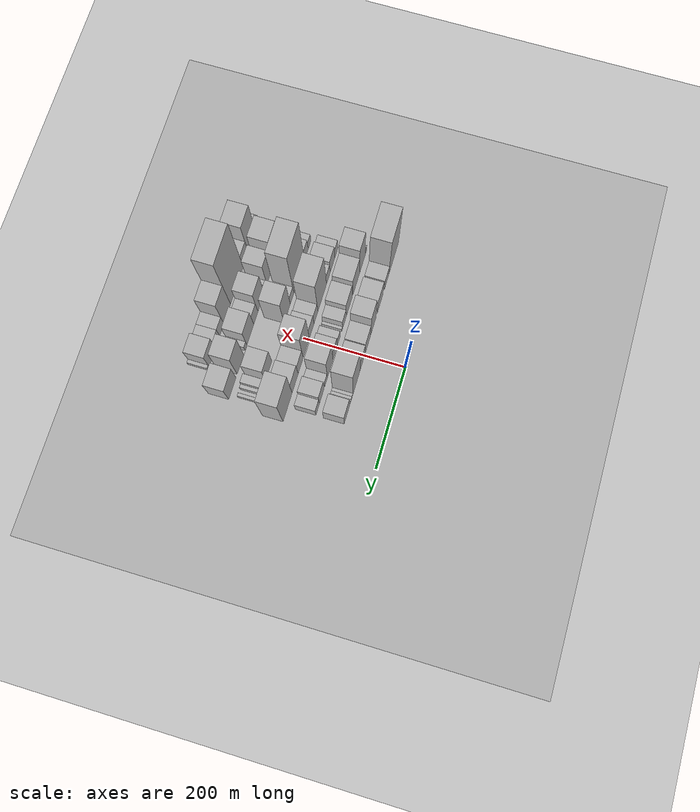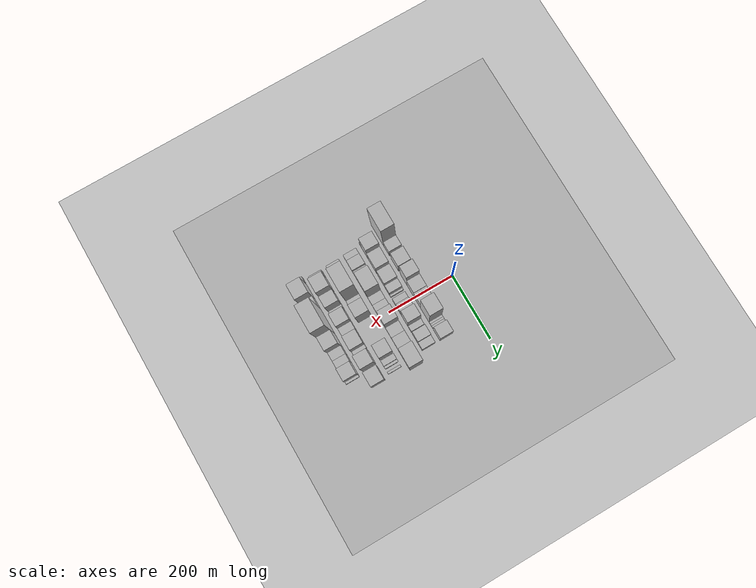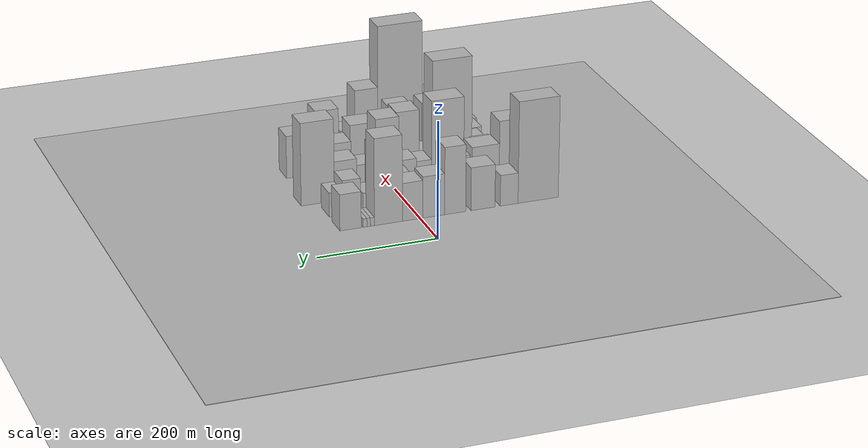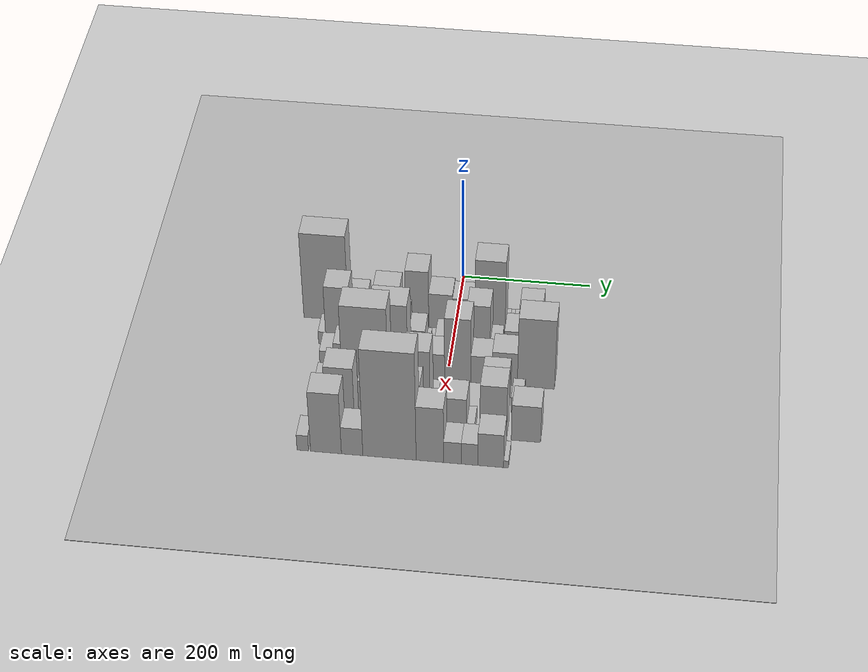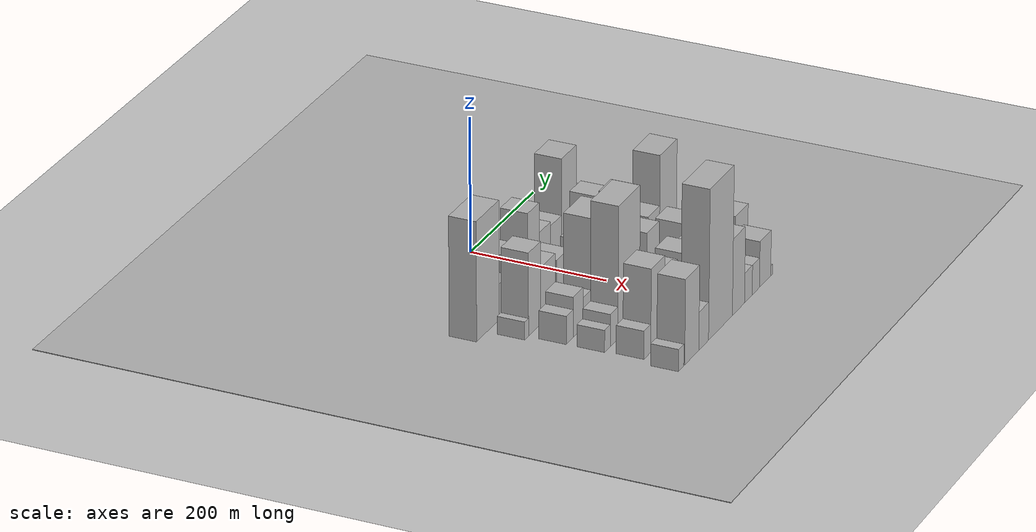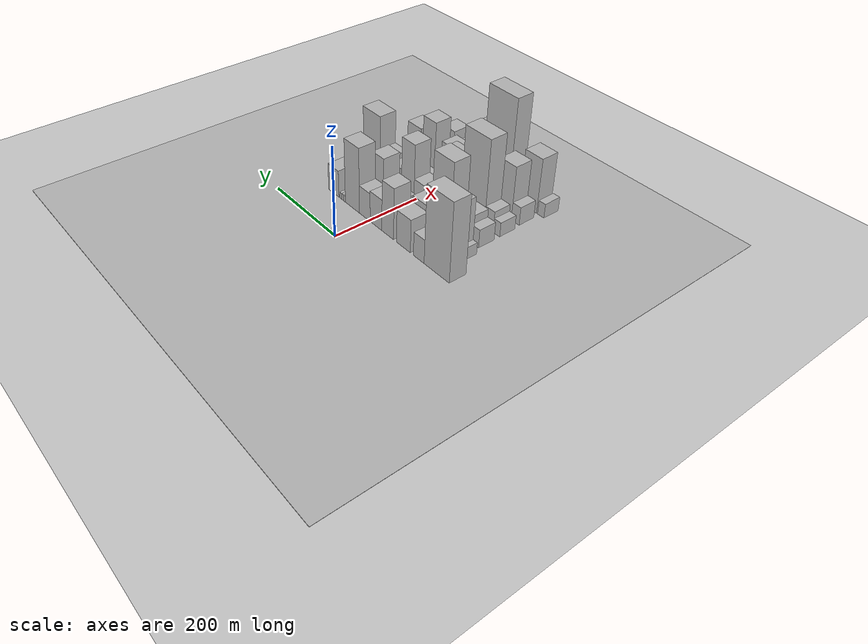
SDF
<sdf version="1.6">
 <world name="default">
  <include><name>ground_plane_1</name><uri>model://HANNAS_ground_plane</uri></include>
  <include>
   <name>ground_plane_2</name>
   <uri>model://HANNAS_ground_plane</uri>
   <pose>100 0 0  0 0 0</pose>
  </include>
  <model name="building_20">
   <static>1</static>
   <pose>100.0000 -201.3446 0 0.000000 0.000000 0.000000</pose>
   <link name="link">
    <pose>0 0 88.50 0 0 0</pose>
    <collision name="collision"><geometry><box><size>40.0000 69.7743 177.0000</size></box></geometry></collision>
    <visual name="visual">
     <cast_shadows>0</cast_shadows>
     <geometry><box><size>40.0000 69.7743 177.0000</size></box></geometry>
     <material>
      <script>
       <uri>model://HANNAS_wall/materials/scripts</uri>
       <uri>model://HANNAS_wall/materials/textures</uri>
       <name>vrc/HANNAS_wall</name>
      </script>
     </material>
    </visual>
   </link>
  </model>
  <model name="building_21">
   <static>1</static>
   <pose>100.0000 -151.1282 0 0.000000 0.000000 0.000000</pose>
   <link name="link">
    <pose>0 0 27.00 0 0 0</pose>
    <collision name="collision"><geometry><box><size>40.0000 30.6586 54.0000</size></box></geometry></collision>
    <visual name="visual">
     <cast_shadows>0</cast_shadows>
     <geometry><box><size>40.0000 30.6586 54.0000</size></box></geometry>
     <material>
      <script>
       <uri>model://HANNAS_wall/materials/scripts</uri>
       <uri>model://HANNAS_wall/materials/textures</uri>
       <name>vrc/HANNAS_wall</name>
      </script>
     </material>
    </visual>
   </link>
  </model>
  <model name="building_22">
   <static>1</static>
   <pose>100.0000 -106.2532 0 0.000000 0.000000 0.000000</pose>
   <link name="link">
    <pose>0 0 37.50 0 0 0</pose>
    <collision name="collision"><geometry><box><size>40.0000 41.0914 75.0000</size></box></geometry></collision>
    <visual name="visual">
     <cast_shadows>0</cast_shadows>
     <geometry><box><size>40.0000 41.0914 75.0000</size></box></geometry>
     <material>
      <script>
       <uri>model://HANNAS_wall/materials/scripts</uri>
       <uri>model://HANNAS_wall/materials/textures</uri>
       <name>vrc/HANNAS_wall</name>
      </script>
     </material>
    </visual>
   </link>
  </model>
  <model name="building_23">
   <static>1</static>
   <pose>100.0000 -58.7325 0 0.000000 0.000000 0.000000</pose>
   <link name="link">
    <pose>0 0 58.50 0 0 0</pose>
    <collision name="collision"><geometry><box><size>40.0000 35.9500 117.0000</size></box></geometry></collision>
    <visual name="visual">
     <cast_shadows>0</cast_shadows>
     <geometry><box><size>40.0000 35.9500 117.0000</size></box></geometry>
     <material>
      <script>
       <uri>model://HANNAS_wall/materials/scripts</uri>
       <uri>model://HANNAS_wall/materials/textures</uri>
       <name>vrc/HANNAS_wall</name>
      </script>
     </material>
    </visual>
   </link>
  </model>
  <model name="building_24">
   <static>1</static>
   <pose>100.0000 -22.3006 0 0.000000 0.000000 0.000000</pose>
   <link name="link">
    <pose>0 0 36.00 0 0 0</pose>
    <collision name="collision"><geometry><box><size>40.0000 36.9137 72.0000</size></box></geometry></collision>
    <visual name="visual">
     <cast_shadows>0</cast_shadows>
     <geometry><box><size>40.0000 36.9137 72.0000</size></box></geometry>
     <material>
      <script>
       <uri>model://HANNAS_wall/materials/scripts</uri>
       <uri>model://HANNAS_wall/materials/textures</uri>
       <name>vrc/HANNAS_wall</name>
      </script>
     </material>
    </visual>
   </link>
  </model>
  <model name="building_25">
   <static>1</static>
   <pose>100.0000 13.4594 0 0.000000 0.000000 0.000000</pose>
   <link name="link">
    <pose>0 0 33.00 0 0 0</pose>
    <collision name="collision"><geometry><box><size>40.0000 34.6064 66.0000</size></box></geometry></collision>
    <visual name="visual">
     <cast_shadows>0</cast_shadows>
     <geometry><box><size>40.0000 34.6064 66.0000</size></box></geometry>
     <material>
      <script>
       <uri>model://HANNAS_wall/materials/scripts</uri>
       <uri>model://HANNAS_wall/materials/textures</uri>
       <name>vrc/HANNAS_wall</name>
      </script>
     </material>
    </visual>
   </link>
  </model>
  <model name="building_26">
   <static>1</static>
   <pose>100.0000 54.2847 0 0.000000 0.000000 0.000000</pose>
   <link name="link">
    <pose>0 0 75.00 0 0 0</pose>
    <collision name="collision"><geometry><box><size>40.0000 47.0442 150.0000</size></box></geometry></collision>
    <visual name="visual">
     <cast_shadows>0</cast_shadows>
     <geometry><box><size>40.0000 47.0442 150.0000</size></box></geometry>
     <material>
      <script>
       <uri>model://HANNAS_wall/materials/scripts</uri>
       <uri>model://HANNAS_wall/materials/textures</uri>
       <name>vrc/HANNAS_wall</name>
      </script>
     </material>
    </visual>
   </link>
  </model>
  <model name="building_27">
   <static>1</static>
   <pose>100.0000 81.0276 0 0.000000 0.000000 0.000000</pose>
   <link name="link">
    <pose>0 0 7.50 0 0 0</pose>
    <collision name="collision"><geometry><box><size>40.0000 6.4415 15.0000</size></box></geometry></collision>
    <visual name="visual">
     <cast_shadows>0</cast_shadows>
     <geometry><box><size>40.0000 6.4415 15.0000</size></box></geometry>
     <material>
      <script>
       <uri>model://HANNAS_wall/materials/scripts</uri>
       <uri>model://HANNAS_wall/materials/textures</uri>
       <name>vrc/HANNAS_wall</name>
      </script>
     </material>
    </visual>
   </link>
  </model>
  <model name="building_28">
   <static>1</static>
   <pose>100.0000 87.2667 0 0.000000 0.000000 0.000000</pose>
   <link name="link">
    <pose>0 0 7.50 0 0 0</pose>
    <collision name="collision"><geometry><box><size>40.0000 6.0367 15.0000</size></box></geometry></collision>
    <visual name="visual">
     <cast_shadows>0</cast_shadows>
     <geometry><box><size>40.0000 6.0367 15.0000</size></box></geometry>
     <material>
      <script>
       <uri>model://HANNAS_wall/materials/scripts</uri>
       <uri>model://HANNAS_wall/materials/textures</uri>
       <name>vrc/HANNAS_wall</name>
      </script>
     </material>
    </visual>
   </link>
  </model>
  <model name="building_29">
   <static>1</static>
   <pose>100.0000 93.5293 0 0.000000 0.000000 0.000000</pose>
   <link name="link">
    <pose>0 0 7.50 0 0 0</pose>
    <collision name="collision"><geometry><box><size>40.0000 6.4887 15.0000</size></box></geometry></collision>
    <visual name="visual">
     <cast_shadows>0</cast_shadows>
     <geometry><box><size>40.0000 6.4887 15.0000</size></box></geometry>
     <material>
      <script>
       <uri>model://HANNAS_wall/materials/scripts</uri>
       <uri>model://HANNAS_wall/materials/textures</uri>
       <name>vrc/HANNAS_wall</name>
      </script>
     </material>
    </visual>
   </link>
  </model>
  <model name="building_30">
   <static>1</static>
   <pose>100.0000 117.5824 0 0.000000 0.000000 0.000000</pose>
   <link name="link">
    <pose>0 0 31.50 0 0 0</pose>
    <collision name="collision"><geometry><box><size>40.0000 35.6174 63.0000</size></box></geometry></collision>
    <visual name="visual">
     <cast_shadows>0</cast_shadows>
     <geometry><box><size>40.0000 35.6174 63.0000</size></box></geometry>
     <material>
      <script>
       <uri>model://HANNAS_wall/materials/scripts</uri>
       <uri>model://HANNAS_wall/materials/textures</uri>
       <name>vrc/HANNAS_wall</name>
      </script>
     </material>
    </visual>
   </link>
  </model>
  <model name="building_73">
   <static>1</static>
   <pose>155.0000 -198.6555 0 0.000000 0.000000 0.000000</pose>
   <link name="link">
    <pose>0 0 13.50 0 0 0</pose>
    <collision name="collision"><geometry><box><size>40.0000 11.7102 27.0000</size></box></geometry></collision>
    <visual name="visual">
     <cast_shadows>0</cast_shadows>
     <geometry><box><size>40.0000 11.7102 27.0000</size></box></geometry>
     <material>
      <script>
       <uri>model://HANNAS_wall/materials/scripts</uri>
       <uri>model://HANNAS_wall/materials/textures</uri>
       <name>vrc/HANNAS_wall</name>
      </script>
     </material>
    </visual>
   </link>
  </model>
  <model name="building_74">
   <static>1</static>
   <pose>155.0000 -174.0306 0 0.000000 0.000000 0.000000</pose>
   <link name="link">
    <pose>0 0 61.50 0 0 0</pose>
    <collision name="collision"><geometry><box><size>40.0000 37.5398 123.0000</size></box></geometry></collision>
    <visual name="visual">
     <cast_shadows>0</cast_shadows>
     <geometry><box><size>40.0000 37.5398 123.0000</size></box></geometry>
     <material>
      <script>
       <uri>model://HANNAS_wall/materials/scripts</uri>
       <uri>model://HANNAS_wall/materials/textures</uri>
       <name>vrc/HANNAS_wall</name>
      </script>
     </material>
    </visual>
   </link>
  </model>
  <model name="building_75">
   <static>1</static>
   <pose>155.0000 -131.9010 0 0.000000 0.000000 0.000000</pose>
   <link name="link">
    <pose>0 0 42.00 0 0 0</pose>
    <collision name="collision"><geometry><box><size>40.0000 46.7193 84.0000</size></box></geometry></collision>
    <visual name="visual">
     <cast_shadows>0</cast_shadows>
     <geometry><box><size>40.0000 46.7193 84.0000</size></box></geometry>
     <material>
      <script>
       <uri>model://HANNAS_wall/materials/scripts</uri>
       <uri>model://HANNAS_wall/materials/textures</uri>
       <name>vrc/HANNAS_wall</name>
      </script>
     </material>
    </visual>
   </link>
  </model>
  <model name="building_76">
   <static>1</static>
   <pose>155.0000 -84.4786 0 0.000000 0.000000 0.000000</pose>
   <link name="link">
    <pose>0 0 36.00 0 0 0</pose>
    <collision name="collision"><geometry><box><size>40.0000 40.1254 72.0000</size></box></geometry></collision>
    <visual name="visual">
     <cast_shadows>0</cast_shadows>
     <geometry><box><size>40.0000 40.1254 72.0000</size></box></geometry>
     <material>
      <script>
       <uri>model://HANNAS_wall/materials/scripts</uri>
       <uri>model://HANNAS_wall/materials/textures</uri>
       <name>vrc/HANNAS_wall</name>
      </script>
     </material>
    </visual>
   </link>
  </model>
  <model name="building_77">
   <static>1</static>
   <pose>155.0000 -52.0069 0 0.000000 0.000000 0.000000</pose>
   <link name="link">
    <pose>0 0 22.50 0 0 0</pose>
    <collision name="collision"><geometry><box><size>40.0000 24.8181 45.0000</size></box></geometry></collision>
    <visual name="visual">
     <cast_shadows>0</cast_shadows>
     <geometry><box><size>40.0000 24.8181 45.0000</size></box></geometry>
     <material>
      <script>
       <uri>model://HANNAS_wall/materials/scripts</uri>
       <uri>model://HANNAS_wall/materials/textures</uri>
       <name>vrc/HANNAS_wall</name>
      </script>
     </material>
    </visual>
   </link>
  </model>
  <model name="building_78">
   <static>1</static>
   <pose>155.0000 -36.5158 0 0.000000 0.000000 0.000000</pose>
   <link name="link">
    <pose>0 0 7.50 0 0 0</pose>
    <collision name="collision"><geometry><box><size>40.0000 6.1641 15.0000</size></box></geometry></collision>
    <visual name="visual">
     <cast_shadows>0</cast_shadows>
     <geometry><box><size>40.0000 6.1641 15.0000</size></box></geometry>
     <material>
      <script>
       <uri>model://HANNAS_wall/materials/scripts</uri>
       <uri>model://HANNAS_wall/materials/textures</uri>
       <name>vrc/HANNAS_wall</name>
      </script>
     </material>
    </visual>
   </link>
  </model>
  <model name="building_79">
   <static>1</static>
   <pose>155.0000 -14.5447 0 0.000000 0.000000 0.000000</pose>
   <link name="link">
    <pose>0 0 18.00 0 0 0</pose>
    <collision name="collision"><geometry><box><size>40.0000 19.7781 36.0000</size></box></geometry></collision>
    <visual name="visual">
     <cast_shadows>0</cast_shadows>
     <geometry><box><size>40.0000 19.7781 36.0000</size></box></geometry>
     <material>
      <script>
       <uri>model://HANNAS_wall/materials/scripts</uri>
       <uri>model://HANNAS_wall/materials/textures</uri>
       <name>vrc/HANNAS_wall</name>
      </script>
     </material>
    </visual>
   </link>
  </model>
  <model name="building_80">
   <static>1</static>
   <pose>155.0000 9.8676 0 0.000000 0.000000 0.000000</pose>
   <link name="link">
    <pose>0 0 27.00 0 0 0</pose>
    <collision name="collision"><geometry><box><size>40.0000 29.0464 54.0000</size></box></geometry></collision>
    <visual name="visual">
     <cast_shadows>0</cast_shadows>
     <geometry><box><size>40.0000 29.0464 54.0000</size></box></geometry>
     <material>
      <script>
       <uri>model://HANNAS_wall/materials/scripts</uri>
       <uri>model://HANNAS_wall/materials/textures</uri>
       <name>vrc/HANNAS_wall</name>
      </script>
     </material>
    </visual>
   </link>
  </model>
  <model name="building_81">
   <static>1</static>
   <pose>155.0000 42.1781 0 0.000000 0.000000 0.000000</pose>
   <link name="link">
    <pose>0 0 54.00 0 0 0</pose>
    <collision name="collision"><geometry><box><size>40.0000 35.5747 108.0000</size></box></geometry></collision>
    <visual name="visual">
     <cast_shadows>0</cast_shadows>
     <geometry><box><size>40.0000 35.5747 108.0000</size></box></geometry>
     <material>
      <script>
       <uri>model://HANNAS_wall/materials/scripts</uri>
       <uri>model://HANNAS_wall/materials/textures</uri>
       <name>vrc/HANNAS_wall</name>
      </script>
     </material>
    </visual>
   </link>
  </model>
  <model name="building_82">
   <static>1</static>
   <pose>155.0000 68.7974 0 0.000000 0.000000 0.000000</pose>
   <link name="link">
    <pose>0 0 16.50 0 0 0</pose>
    <collision name="collision"><geometry><box><size>40.0000 17.6639 33.0000</size></box></geometry></collision>
    <visual name="visual">
     <cast_shadows>0</cast_shadows>
     <geometry><box><size>40.0000 17.6639 33.0000</size></box></geometry>
     <material>
      <script>
       <uri>model://HANNAS_wall/materials/scripts</uri>
       <uri>model://HANNAS_wall/materials/textures</uri>
       <name>vrc/HANNAS_wall</name>
      </script>
     </material>
    </visual>
   </link>
  </model>
  <model name="building_83">
   <static>1</static>
   <pose>155.0000 96.8681 0 0.000000 0.000000 0.000000</pose>
   <link name="link">
    <pose>0 0 30.00 0 0 0</pose>
    <collision name="collision"><geometry><box><size>40.0000 30.4774 60.0000</size></box></geometry></collision>
    <visual name="visual">
     <cast_shadows>0</cast_shadows>
     <geometry><box><size>40.0000 30.4774 60.0000</size></box></geometry>
     <material>
      <script>
       <uri>model://HANNAS_wall/materials/scripts</uri>
       <uri>model://HANNAS_wall/materials/textures</uri>
       <name>vrc/HANNAS_wall</name>
      </script>
     </material>
    </visual>
   </link>
  </model>
  <model name="building_84">
   <static>1</static>
   <pose>155.0000 123.2634 0 0.000000 0.000000 0.000000</pose>
   <link name="link">
    <pose>0 0 21.00 0 0 0</pose>
    <collision name="collision"><geometry><box><size>40.0000 22.3132 42.0000</size></box></geometry></collision>
    <visual name="visual">
     <cast_shadows>0</cast_shadows>
     <geometry><box><size>40.0000 22.3132 42.0000</size></box></geometry>
     <material>
      <script>
       <uri>model://HANNAS_wall/materials/scripts</uri>
       <uri>model://HANNAS_wall/materials/textures</uri>
       <name>vrc/HANNAS_wall</name>
      </script>
     </material>
    </visual>
   </link>
  </model>
  <model name="building_128">
   <static>1</static>
   <pose>210.0000 -182.5738 0 0.000000 0.000000 0.000000</pose>
   <link name="link">
    <pose>0 0 21.00 0 0 0</pose>
    <collision name="collision"><geometry><box><size>40.0000 21.4988 42.0000</size></box></geometry></collision>
    <visual name="visual">
     <cast_shadows>0</cast_shadows>
     <geometry><box><size>40.0000 21.4988 42.0000</size></box></geometry>
     <material>
      <script>
       <uri>model://HANNAS_wall/materials/scripts</uri>
       <uri>model://HANNAS_wall/materials/textures</uri>
       <name>vrc/HANNAS_wall</name>
      </script>
     </material>
    </visual>
   </link>
  </model>
  <model name="building_129">
   <static>1</static>
   <pose>210.0000 -156.0435 0 0.000000 0.000000 0.000000</pose>
   <link name="link">
    <pose>0 0 30.00 0 0 0</pose>
    <collision name="collision"><geometry><box><size>40.0000 31.5618 60.0000</size></box></geometry></collision>
    <visual name="visual">
     <cast_shadows>0</cast_shadows>
     <geometry><box><size>40.0000 31.5618 60.0000</size></box></geometry>
     <material>
      <script>
       <uri>model://HANNAS_wall/materials/scripts</uri>
       <uri>model://HANNAS_wall/materials/textures</uri>
       <name>vrc/HANNAS_wall</name>
      </script>
     </material>
    </visual>
   </link>
  </model>
  <model name="building_130">
   <static>1</static>
   <pose>210.0000 -127.8274 0 0.000000 0.000000 0.000000</pose>
   <link name="link">
    <pose>0 0 22.50 0 0 0</pose>
    <collision name="collision"><geometry><box><size>40.0000 24.8705 45.0000</size></box></geometry></collision>
    <visual name="visual">
     <cast_shadows>0</cast_shadows>
     <geometry><box><size>40.0000 24.8705 45.0000</size></box></geometry>
     <material>
      <script>
       <uri>model://HANNAS_wall/materials/scripts</uri>
       <uri>model://HANNAS_wall/materials/textures</uri>
       <name>vrc/HANNAS_wall</name>
      </script>
     </material>
    </visual>
   </link>
  </model>
  <model name="building_131">
   <static>1</static>
   <pose>210.0000 -87.2144 0 0.000000 0.000000 0.000000</pose>
   <link name="link">
    <pose>0 0 75.00 0 0 0</pose>
    <collision name="collision"><geometry><box><size>40.0000 56.3555 150.0000</size></box></geometry></collision>
    <visual name="visual">
     <cast_shadows>0</cast_shadows>
     <geometry><box><size>40.0000 56.3555 150.0000</size></box></geometry>
     <material>
      <script>
       <uri>model://HANNAS_wall/materials/scripts</uri>
       <uri>model://HANNAS_wall/materials/textures</uri>
       <name>vrc/HANNAS_wall</name>
      </script>
     </material>
    </visual>
   </link>
  </model>
  <model name="building_132">
   <static>1</static>
   <pose>210.0000 -46.1174 0 0.000000 0.000000 0.000000</pose>
   <link name="link">
    <pose>0 0 24.00 0 0 0</pose>
    <collision name="collision"><geometry><box><size>40.0000 25.8386 48.0000</size></box></geometry></collision>
    <visual name="visual">
     <cast_shadows>0</cast_shadows>
     <geometry><box><size>40.0000 25.8386 48.0000</size></box></geometry>
     <material>
      <script>
       <uri>model://HANNAS_wall/materials/scripts</uri>
       <uri>model://HANNAS_wall/materials/textures</uri>
       <name>vrc/HANNAS_wall</name>
      </script>
     </material>
    </visual>
   </link>
  </model>
  <model name="building_133">
   <static>1</static>
   <pose>210.0000 -18.2294 0 0.000000 0.000000 0.000000</pose>
   <link name="link">
    <pose>0 0 27.00 0 0 0</pose>
    <collision name="collision"><geometry><box><size>40.0000 29.9373 54.0000</size></box></geometry></collision>
    <visual name="visual">
     <cast_shadows>0</cast_shadows>
     <geometry><box><size>40.0000 29.9373 54.0000</size></box></geometry>
     <material>
      <script>
       <uri>model://HANNAS_wall/materials/scripts</uri>
       <uri>model://HANNAS_wall/materials/textures</uri>
       <name>vrc/HANNAS_wall</name>
      </script>
     </material>
    </visual>
   </link>
  </model>
  <model name="building_134">
   <static>1</static>
   <pose>210.0000 16.5444 0 0.000000 0.000000 0.000000</pose>
   <link name="link">
    <pose>0 0 66.00 0 0 0</pose>
    <collision name="collision"><geometry><box><size>40.0000 39.6102 132.0000</size></box></geometry></collision>
    <visual name="visual">
     <cast_shadows>0</cast_shadows>
     <geometry><box><size>40.0000 39.6102 132.0000</size></box></geometry>
     <material>
      <script>
       <uri>model://HANNAS_wall/materials/scripts</uri>
       <uri>model://HANNAS_wall/materials/textures</uri>
       <name>vrc/HANNAS_wall</name>
      </script>
     </material>
    </visual>
   </link>
  </model>
  <model name="building_135">
   <static>1</static>
   <pose>210.0000 52.4841 0 0.000000 0.000000 0.000000</pose>
   <link name="link">
    <pose>0 0 28.50 0 0 0</pose>
    <collision name="collision"><geometry><box><size>40.0000 32.2692 57.0000</size></box></geometry></collision>
    <visual name="visual">
     <cast_shadows>0</cast_shadows>
     <geometry><box><size>40.0000 32.2692 57.0000</size></box></geometry>
     <material>
      <script>
       <uri>model://HANNAS_wall/materials/scripts</uri>
       <uri>model://HANNAS_wall/materials/textures</uri>
       <name>vrc/HANNAS_wall</name>
      </script>
     </material>
    </visual>
   </link>
  </model>
  <model name="building_136">
   <static>1</static>
   <pose>210.0000 87.8086 0 0.000000 0.000000 0.000000</pose>
   <link name="link">
    <pose>0 0 34.50 0 0 0</pose>
    <collision name="collision"><geometry><box><size>40.0000 38.3798 69.0000</size></box></geometry></collision>
    <visual name="visual">
     <cast_shadows>0</cast_shadows>
     <geometry><box><size>40.0000 38.3798 69.0000</size></box></geometry>
     <material>
      <script>
       <uri>model://HANNAS_wall/materials/scripts</uri>
       <uri>model://HANNAS_wall/materials/textures</uri>
       <name>vrc/HANNAS_wall</name>
      </script>
     </material>
    </visual>
   </link>
  </model>
  <model name="building_137">
   <static>1</static>
   <pose>210.0000 135.0803 0 0.000000 0.000000 0.000000</pose>
   <link name="link">
    <pose>0 0 72.00 0 0 0</pose>
    <collision name="collision"><geometry><box><size>40.0000 56.1637 144.0000</size></box></geometry></collision>
    <visual name="visual">
     <cast_shadows>0</cast_shadows>
     <geometry><box><size>40.0000 56.1637 144.0000</size></box></geometry>
     <material>
      <script>
       <uri>model://HANNAS_wall/materials/scripts</uri>
       <uri>model://HANNAS_wall/materials/textures</uri>
       <name>vrc/HANNAS_wall</name>
      </script>
     </material>
    </visual>
   </link>
  </model>
  <model name="building_179">
   <static>1</static>
   <pose>265.0000 -183.7679 0 0.000000 0.000000 0.000000</pose>
   <link name="link">
    <pose>0 0 16.50 0 0 0</pose>
    <collision name="collision"><geometry><box><size>40.0000 18.1372 33.0000</size></box></geometry></collision>
    <visual name="visual">
     <cast_shadows>0</cast_shadows>
     <geometry><box><size>40.0000 18.1372 33.0000</size></box></geometry>
     <material>
      <script>
       <uri>model://HANNAS_wall/materials/scripts</uri>
       <uri>model://HANNAS_wall/materials/textures</uri>
       <name>vrc/HANNAS_wall</name>
      </script>
     </material>
    </visual>
   </link>
  </model>
  <model name="building_180">
   <static>1</static>
   <pose>265.0000 -162.4376 0 0.000000 0.000000 0.000000</pose>
   <link name="link">
    <pose>0 0 24.00 0 0 0</pose>
    <collision name="collision"><geometry><box><size>40.0000 24.5234 48.0000</size></box></geometry></collision>
    <visual name="visual">
     <cast_shadows>0</cast_shadows>
     <geometry><box><size>40.0000 24.5234 48.0000</size></box></geometry>
     <material>
      <script>
       <uri>model://HANNAS_wall/materials/scripts</uri>
       <uri>model://HANNAS_wall/materials/textures</uri>
       <name>vrc/HANNAS_wall</name>
      </script>
     </material>
    </visual>
   </link>
  </model>
  <model name="building_181">
   <static>1</static>
   <pose>265.0000 -115.6852 0 0.000000 0.000000 0.000000</pose>
   <link name="link">
    <pose>0 0 97.50 0 0 0</pose>
    <collision name="collision"><geometry><box><size>40.0000 68.9814 195.0000</size></box></geometry></collision>
    <visual name="visual">
     <cast_shadows>0</cast_shadows>
     <geometry><box><size>40.0000 68.9814 195.0000</size></box></geometry>
     <material>
      <script>
       <uri>model://HANNAS_wall/materials/scripts</uri>
       <uri>model://HANNAS_wall/materials/textures</uri>
       <name>vrc/HANNAS_wall</name>
      </script>
     </material>
    </visual>
   </link>
  </model>
  <model name="building_182">
   <static>1</static>
   <pose>265.0000 -69.5082 0 0.000000 0.000000 0.000000</pose>
   <link name="link">
    <pose>0 0 19.50 0 0 0</pose>
    <collision name="collision"><geometry><box><size>40.0000 23.3725 39.0000</size></box></geometry></collision>
    <visual name="visual">
     <cast_shadows>0</cast_shadows>
     <geometry><box><size>40.0000 23.3725 39.0000</size></box></geometry>
     <material>
      <script>
       <uri>model://HANNAS_wall/materials/scripts</uri>
       <uri>model://HANNAS_wall/materials/textures</uri>
       <name>vrc/HANNAS_wall</name>
      </script>
     </material>
    </visual>
   </link>
  </model>
  <model name="building_183">
   <static>1</static>
   <pose>265.0000 -38.2644 0 0.000000 0.000000 0.000000</pose>
   <link name="link">
    <pose>0 0 57.00 0 0 0</pose>
    <collision name="collision"><geometry><box><size>40.0000 39.1151 114.0000</size></box></geometry></collision>
    <visual name="visual">
     <cast_shadows>0</cast_shadows>
     <geometry><box><size>40.0000 39.1151 114.0000</size></box></geometry>
     <material>
      <script>
       <uri>model://HANNAS_wall/materials/scripts</uri>
       <uri>model://HANNAS_wall/materials/textures</uri>
       <name>vrc/HANNAS_wall</name>
      </script>
     </material>
    </visual>
   </link>
  </model>
  <model name="building_184">
   <static>1</static>
   <pose>265.0000 78.8642 0 0.000000 0.000000 0.000000</pose>
   <link name="link">
    <pose>0 0 37.50 0 0 0</pose>
    <collision name="collision"><geometry><box><size>40.0000 39.7140 75.0000</size></box></geometry></collision>
    <visual name="visual">
     <cast_shadows>0</cast_shadows>
     <geometry><box><size>40.0000 39.7140 75.0000</size></box></geometry>
     <material>
      <script>
       <uri>model://HANNAS_wall/materials/scripts</uri>
       <uri>model://HANNAS_wall/materials/textures</uri>
       <name>vrc/HANNAS_wall</name>
      </script>
     </material>
    </visual>
   </link>
  </model>
  <model name="building_185">
   <static>1</static>
   <pose>265.0000 111.4867 0 0.000000 0.000000 0.000000</pose>
   <link name="link">
    <pose>0 0 16.50 0 0 0</pose>
    <collision name="collision"><geometry><box><size>40.0000 17.5309 33.0000</size></box></geometry></collision>
    <visual name="visual">
     <cast_shadows>0</cast_shadows>
     <geometry><box><size>40.0000 17.5309 33.0000</size></box></geometry>
     <material>
      <script>
       <uri>model://HANNAS_wall/materials/scripts</uri>
       <uri>model://HANNAS_wall/materials/textures</uri>
       <name>vrc/HANNAS_wall</name>
      </script>
     </material>
    </visual>
   </link>
  </model>
  <model name="building_186">
   <static>1</static>
   <pose>265.0000 123.9360 0 0.000000 0.000000 0.000000</pose>
   <link name="link">
    <pose>0 0 9.00 0 0 0</pose>
    <collision name="collision"><geometry><box><size>40.0000 7.3678 18.0000</size></box></geometry></collision>
    <visual name="visual">
     <cast_shadows>0</cast_shadows>
     <geometry><box><size>40.0000 7.3678 18.0000</size></box></geometry>
     <material>
      <script>
       <uri>model://HANNAS_wall/materials/scripts</uri>
       <uri>model://HANNAS_wall/materials/textures</uri>
       <name>vrc/HANNAS_wall</name>
      </script>
     </material>
    </visual>
   </link>
  </model>
  <model name="building_187">
   <static>1</static>
   <pose>265.0000 139.9263 0 0.000000 0.000000 0.000000</pose>
   <link name="link">
    <pose>0 0 7.50 0 0 0</pose>
    <collision name="collision"><geometry><box><size>40.0000 6.6129 15.0000</size></box></geometry></collision>
    <visual name="visual">
     <cast_shadows>0</cast_shadows>
     <geometry><box><size>40.0000 6.6129 15.0000</size></box></geometry>
     <material>
      <script>
       <uri>model://HANNAS_wall/materials/scripts</uri>
       <uri>model://HANNAS_wall/materials/textures</uri>
       <name>vrc/HANNAS_wall</name>
      </script>
     </material>
    </visual>
   </link>
  </model>
  <model name="building_231">
   <static>1</static>
   <pose>320.0000 -178.3278 0 0.000000 0.000000 0.000000</pose>
   <link name="link">
    <pose>0 0 21.00 0 0 0</pose>
    <collision name="collision"><geometry><box><size>40.0000 21.5635 42.0000</size></box></geometry></collision>
    <visual name="visual">
     <cast_shadows>0</cast_shadows>
     <geometry><box><size>40.0000 21.5635 42.0000</size></box></geometry>
     <material>
      <script>
       <uri>model://HANNAS_wall/materials/scripts</uri>
       <uri>model://HANNAS_wall/materials/textures</uri>
       <name>vrc/HANNAS_wall</name>
      </script>
     </material>
    </visual>
   </link>
  </model>
  <model name="building_232">
   <static>1</static>
   <pose>320.0000 -145.9369 0 0.000000 0.000000 0.000000</pose>
   <link name="link">
    <pose>0 0 61.50 0 0 0</pose>
    <collision name="collision"><geometry><box><size>40.0000 43.2183 123.0000</size></box></geometry></collision>
    <visual name="visual">
     <cast_shadows>0</cast_shadows>
     <geometry><box><size>40.0000 43.2183 123.0000</size></box></geometry>
     <material>
      <script>
       <uri>model://HANNAS_wall/materials/scripts</uri>
       <uri>model://HANNAS_wall/materials/textures</uri>
       <name>vrc/HANNAS_wall</name>
      </script>
     </material>
    </visual>
   </link>
  </model>
  <model name="building_233">
   <static>1</static>
   <pose>320.0000 -100.2383 0 0.000000 0.000000 0.000000</pose>
   <link name="link">
    <pose>0 0 49.50 0 0 0</pose>
    <collision name="collision"><geometry><box><size>40.0000 34.1788 99.0000</size></box></geometry></collision>
    <visual name="visual">
     <cast_shadows>0</cast_shadows>
     <geometry><box><size>40.0000 34.1788 99.0000</size></box></geometry>
     <material>
      <script>
       <uri>model://HANNAS_wall/materials/scripts</uri>
       <uri>model://HANNAS_wall/materials/textures</uri>
       <name>vrc/HANNAS_wall</name>
      </script>
     </material>
    </visual>
   </link>
  </model>
  <model name="building_234">
   <static>1</static>
   <pose>320.0000 -77.8173 0 0.000000 0.000000 0.000000</pose>
   <link name="link">
    <pose>0 0 12.00 0 0 0</pose>
    <collision name="collision"><geometry><box><size>40.0000 10.6631 24.0000</size></box></geometry></collision>
    <visual name="visual">
     <cast_shadows>0</cast_shadows>
     <geometry><box><size>40.0000 10.6631 24.0000</size></box></geometry>
     <material>
      <script>
       <uri>model://HANNAS_wall/materials/scripts</uri>
       <uri>model://HANNAS_wall/materials/textures</uri>
       <name>vrc/HANNAS_wall</name>
      </script>
     </material>
    </visual>
   </link>
  </model>
  <model name="building_235">
   <static>1</static>
   <pose>320.0000 -68.8357 0 0.000000 0.000000 0.000000</pose>
   <link name="link">
    <pose>0 0 7.50 0 0 0</pose>
    <collision name="collision"><geometry><box><size>40.0000 7.3001 15.0000</size></box></geometry></collision>
    <visual name="visual">
     <cast_shadows>0</cast_shadows>
     <geometry><box><size>40.0000 7.3001 15.0000</size></box></geometry>
     <material>
      <script>
       <uri>model://HANNAS_wall/materials/scripts</uri>
       <uri>model://HANNAS_wall/materials/textures</uri>
       <name>vrc/HANNAS_wall</name>
      </script>
     </material>
    </visual>
   </link>
  </model>
  <model name="building_236">
   <static>1</static>
   <pose>320.0000 -45.8708 0 0.000000 0.000000 0.000000</pose>
   <link name="link">
    <pose>0 0 49.50 0 0 0</pose>
    <collision name="collision"><geometry><box><size>40.0000 38.6296 99.0000</size></box></geometry></collision>
    <visual name="visual">
     <cast_shadows>0</cast_shadows>
     <geometry><box><size>40.0000 38.6296 99.0000</size></box></geometry>
     <material>
      <script>
       <uri>model://HANNAS_wall/materials/scripts</uri>
       <uri>model://HANNAS_wall/materials/textures</uri>
       <name>vrc/HANNAS_wall</name>
      </script>
     </material>
    </visual>
   </link>
  </model>
  <model name="building_237">
   <static>1</static>
   <pose>320.0000 -13.3959 0 0.000000 0.000000 0.000000</pose>
   <link name="link">
    <pose>0 0 25.50 0 0 0</pose>
    <collision name="collision"><geometry><box><size>40.0000 26.3202 51.0000</size></box></geometry></collision>
    <visual name="visual">
     <cast_shadows>0</cast_shadows>
     <geometry><box><size>40.0000 26.3202 51.0000</size></box></geometry>
     <material>
      <script>
       <uri>model://HANNAS_wall/materials/scripts</uri>
       <uri>model://HANNAS_wall/materials/textures</uri>
       <name>vrc/HANNAS_wall</name>
      </script>
     </material>
    </visual>
   </link>
  </model>
  <model name="building_238">
   <static>1</static>
   <pose>320.0000 20.8801 0 0.000000 0.000000 0.000000</pose>
   <link name="link">
    <pose>0 0 39.00 0 0 0</pose>
    <collision name="collision"><geometry><box><size>40.0000 42.2318 78.0000</size></box></geometry></collision>
    <visual name="visual">
     <cast_shadows>0</cast_shadows>
     <geometry><box><size>40.0000 42.2318 78.0000</size></box></geometry>
     <material>
      <script>
       <uri>model://HANNAS_wall/materials/scripts</uri>
       <uri>model://HANNAS_wall/materials/textures</uri>
       <name>vrc/HANNAS_wall</name>
      </script>
     </material>
    </visual>
   </link>
  </model>
  <model name="building_239">
   <static>1</static>
   <pose>320.0000 47.8757 0 0.000000 0.000000 0.000000</pose>
   <link name="link">
    <pose>0 0 12.00 0 0 0</pose>
    <collision name="collision"><geometry><box><size>40.0000 11.7593 24.0000</size></box></geometry></collision>
    <visual name="visual">
     <cast_shadows>0</cast_shadows>
     <geometry><box><size>40.0000 11.7593 24.0000</size></box></geometry>
     <material>
      <script>
       <uri>model://HANNAS_wall/materials/scripts</uri>
       <uri>model://HANNAS_wall/materials/textures</uri>
       <name>vrc/HANNAS_wall</name>
      </script>
     </material>
    </visual>
   </link>
  </model>
  <model name="building_240">
   <static>1</static>
   <pose>320.0000 81.5812 0 0.000000 0.000000 0.000000</pose>
   <link name="link">
    <pose>0 0 55.50 0 0 0</pose>
    <collision name="collision"><geometry><box><size>40.0000 39.6518 111.0000</size></box></geometry></collision>
    <visual name="visual">
     <cast_shadows>0</cast_shadows>
     <geometry><box><size>40.0000 39.6518 111.0000</size></box></geometry>
     <material>
      <script>
       <uri>model://HANNAS_wall/materials/scripts</uri>
       <uri>model://HANNAS_wall/materials/textures</uri>
       <name>vrc/HANNAS_wall</name>
      </script>
     </material>
    </visual>
   </link>
  </model>
  <model name="building_241">
   <static>1</static>
   <pose>320.0000 130.0536 0 0.000000 0.000000 0.000000</pose>
   <link name="link">
    <pose>0 0 37.50 0 0 0</pose>
    <collision name="collision"><geometry><box><size>40.0000 43.2929 75.0000</size></box></geometry></collision>
    <visual name="visual">
     <cast_shadows>0</cast_shadows>
     <geometry><box><size>40.0000 43.2929 75.0000</size></box></geometry>
     <material>
      <script>
       <uri>model://HANNAS_wall/materials/scripts</uri>
       <uri>model://HANNAS_wall/materials/textures</uri>
       <name>vrc/HANNAS_wall</name>
      </script>
     </material>
    </visual>
   </link>
  </model>
  <model name="building_282">
   <static>1</static>
   <pose>375.0000 -193.1884 0 0.000000 0.000000 0.000000</pose>
   <link name="link">
    <pose>0 0 16.50 0 0 0</pose>
    <collision name="collision"><geometry><box><size>40.0000 17.0715 33.0000</size></box></geometry></collision>
    <visual name="visual">
     <cast_shadows>0</cast_shadows>
     <geometry><box><size>40.0000 17.0715 33.0000</size></box></geometry>
     <material>
      <script>
       <uri>model://HANNAS_wall/materials/scripts</uri>
       <uri>model://HANNAS_wall/materials/textures</uri>
       <name>vrc/HANNAS_wall</name>
      </script>
     </material>
    </visual>
   </link>
  </model>
  <model name="building_283">
   <static>1</static>
   <pose>375.0000 -158.7864 0 0.000000 0.000000 0.000000</pose>
   <link name="link">
    <pose>0 0 63.00 0 0 0</pose>
    <collision name="collision"><geometry><box><size>40.0000 45.7324 126.0000</size></box></geometry></collision>
    <visual name="visual">
     <cast_shadows>0</cast_shadows>
     <geometry><box><size>40.0000 45.7324 126.0000</size></box></geometry>
     <material>
      <script>
       <uri>model://HANNAS_wall/materials/scripts</uri>
       <uri>model://HANNAS_wall/materials/textures</uri>
       <name>vrc/HANNAS_wall</name>
      </script>
     </material>
    </visual>
   </link>
  </model>
  <model name="building_284">
   <static>1</static>
   <pose>375.0000 -120.1450 0 0.000000 0.000000 0.000000</pose>
   <link name="link">
    <pose>0 0 28.50 0 0 0</pose>
    <collision name="collision"><geometry><box><size>40.0000 31.5505 57.0000</size></box></geometry></collision>
    <visual name="visual">
     <cast_shadows>0</cast_shadows>
     <geometry><box><size>40.0000 31.5505 57.0000</size></box></geometry>
     <material>
      <script>
       <uri>model://HANNAS_wall/materials/scripts</uri>
       <uri>model://HANNAS_wall/materials/textures</uri>
       <name>vrc/HANNAS_wall</name>
      </script>
     </material>
    </visual>
   </link>
  </model>
  <model name="building_285">
   <static>1</static>
   <pose>375.0000 -65.0545 0 0.000000 0.000000 0.000000</pose>
   <link name="link">
    <pose>0 0 111.00 0 0 0</pose>
    <collision name="collision"><geometry><box><size>40.0000 78.6304 222.0000</size></box></geometry></collision>
    <visual name="visual">
     <cast_shadows>0</cast_shadows>
     <geometry><box><size>40.0000 78.6304 222.0000</size></box></geometry>
     <material>
      <script>
       <uri>model://HANNAS_wall/materials/scripts</uri>
       <uri>model://HANNAS_wall/materials/textures</uri>
       <name>vrc/HANNAS_wall</name>
      </script>
     </material>
    </visual>
   </link>
  </model>
  <model name="building_286">
   <static>1</static>
   <pose>375.0000 -5.6340 0 0.000000 0.000000 0.000000</pose>
   <link name="link">
    <pose>0 0 57.00 0 0 0</pose>
    <collision name="collision"><geometry><box><size>40.0000 40.2107 114.0000</size></box></geometry></collision>
    <visual name="visual">
     <cast_shadows>0</cast_shadows>
     <geometry><box><size>40.0000 40.2107 114.0000</size></box></geometry>
     <material>
      <script>
       <uri>model://HANNAS_wall/materials/scripts</uri>
       <uri>model://HANNAS_wall/materials/textures</uri>
       <name>vrc/HANNAS_wall</name>
      </script>
     </material>
    </visual>
   </link>
  </model>
  <model name="building_287">
   <static>1</static>
   <pose>375.0000 27.3434 0 0.000000 0.000000 0.000000</pose>
   <link name="link">
    <pose>0 0 22.50 0 0 0</pose>
    <collision name="collision"><geometry><box><size>40.0000 25.7441 45.0000</size></box></geometry></collision>
    <visual name="visual">
     <cast_shadows>0</cast_shadows>
     <geometry><box><size>40.0000 25.7441 45.0000</size></box></geometry>
     <material>
      <script>
       <uri>model://HANNAS_wall/materials/scripts</uri>
       <uri>model://HANNAS_wall/materials/textures</uri>
       <name>vrc/HANNAS_wall</name>
      </script>
     </material>
    </visual>
   </link>
  </model>
  <model name="building_288">
   <static>1</static>
   <pose>375.0000 52.3870 0 0.000000 0.000000 0.000000</pose>
   <link name="link">
    <pose>0 0 22.50 0 0 0</pose>
    <collision name="collision"><geometry><box><size>40.0000 24.3432 45.0000</size></box></geometry></collision>
    <visual name="visual">
     <cast_shadows>0</cast_shadows>
     <geometry><box><size>40.0000 24.3432 45.0000</size></box></geometry>
     <material>
      <script>
       <uri>model://HANNAS_wall/materials/scripts</uri>
       <uri>model://HANNAS_wall/materials/textures</uri>
       <name>vrc/HANNAS_wall</name>
      </script>
     </material>
    </visual>
   </link>
  </model>
  <model name="building_289">
   <static>1</static>
   <pose>375.0000 83.5208 0 0.000000 0.000000 0.000000</pose>
   <link name="link">
    <pose>0 0 34.50 0 0 0</pose>
    <collision name="collision"><geometry><box><size>40.0000 37.9243 69.0000</size></box></geometry></collision>
    <visual name="visual">
     <cast_shadows>0</cast_shadows>
     <geometry><box><size>40.0000 37.9243 69.0000</size></box></geometry>
     <material>
      <script>
       <uri>model://HANNAS_wall/materials/scripts</uri>
       <uri>model://HANNAS_wall/materials/textures</uri>
       <name>vrc/HANNAS_wall</name>
      </script>
     </material>
    </visual>
   </link>
  </model>
  <model name="building_290">
   <static>1</static>
   <pose>375.0000 106.0805 0 0.000000 0.000000 0.000000</pose>
   <link name="link">
    <pose>0 0 7.50 0 0 0</pose>
    <collision name="collision"><geometry><box><size>40.0000 7.1951 15.0000</size></box></geometry></collision>
    <visual name="visual">
     <cast_shadows>0</cast_shadows>
     <geometry><box><size>40.0000 7.1951 15.0000</size></box></geometry>
     <material>
      <script>
       <uri>model://HANNAS_wall/materials/scripts</uri>
       <uri>model://HANNAS_wall/materials/textures</uri>
       <name>vrc/HANNAS_wall</name>
      </script>
     </material>
    </visual>
   </link>
  </model>
 </world>
</sdf>
